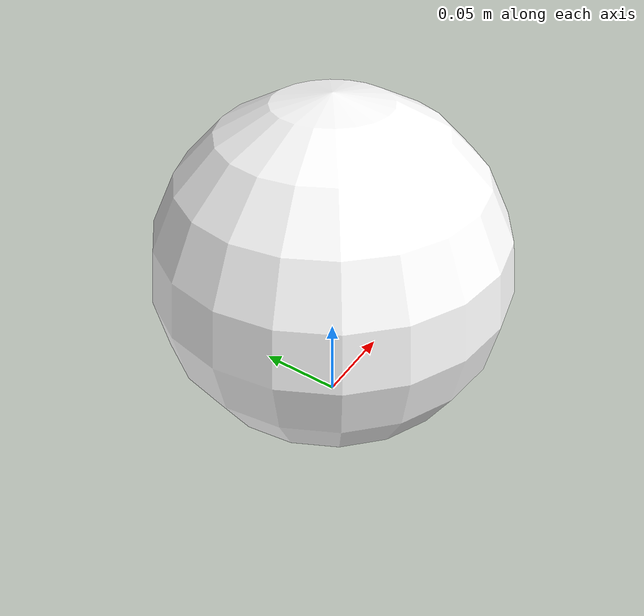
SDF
<?xml version="1.0" ?>
<sdf version="1.8">
  <model name="teensize_ball"> <!-- The TeenSize ball is FIFA size 3, assumed to be diameter 19cm and weight 260 grams -->
    <pose>0 0 0.095 0 0 0</pose>
    <static>false</static>
    <link name="ball">
      <velocity_decay>
        <linear>0</linear>
        <angular>0.0008</angular>
      </velocity_decay>
      <inertial>
        <mass>0.260</mass>
        <inertia> <!-- For the origin of this inertia tensor refer to: https://en.wikipedia.org/wiki/List_of_moments_of_inertia#List_of_3D_inertia_tensors -->
          <ixx>0.00156</ixx>
          <iyy>0.00156</iyy>
          <izz>0.00156</izz>
          <ixy>0</ixy>
          <ixz>0</ixz>
          <iyz>0</iyz>
        </inertia>
      </inertial>
      <collision name="collision">
        <geometry>
          <sphere>
            <radius>0.095</radius>
          </sphere>
        </geometry>
      </collision>
      <visual name="visual">
        <geometry>
          <sphere>
            <radius>0.095</radius>
          </sphere>
        </geometry>
        <material>
          <ambient>1 1 1 1</ambient>
          <diffuse>1 1 1 1</diffuse>
          <specular>1 1 1 1</specular>
          <emissive>0 0 0 1</emissive>
          <pbr>
            <metal>
              <albedo_map>model://teensize_ball/materials/textures/ball_official.png</albedo_map>
            </metal>
          </pbr>
        </material>
      </visual>
    </link>
  </model>
</sdf>
